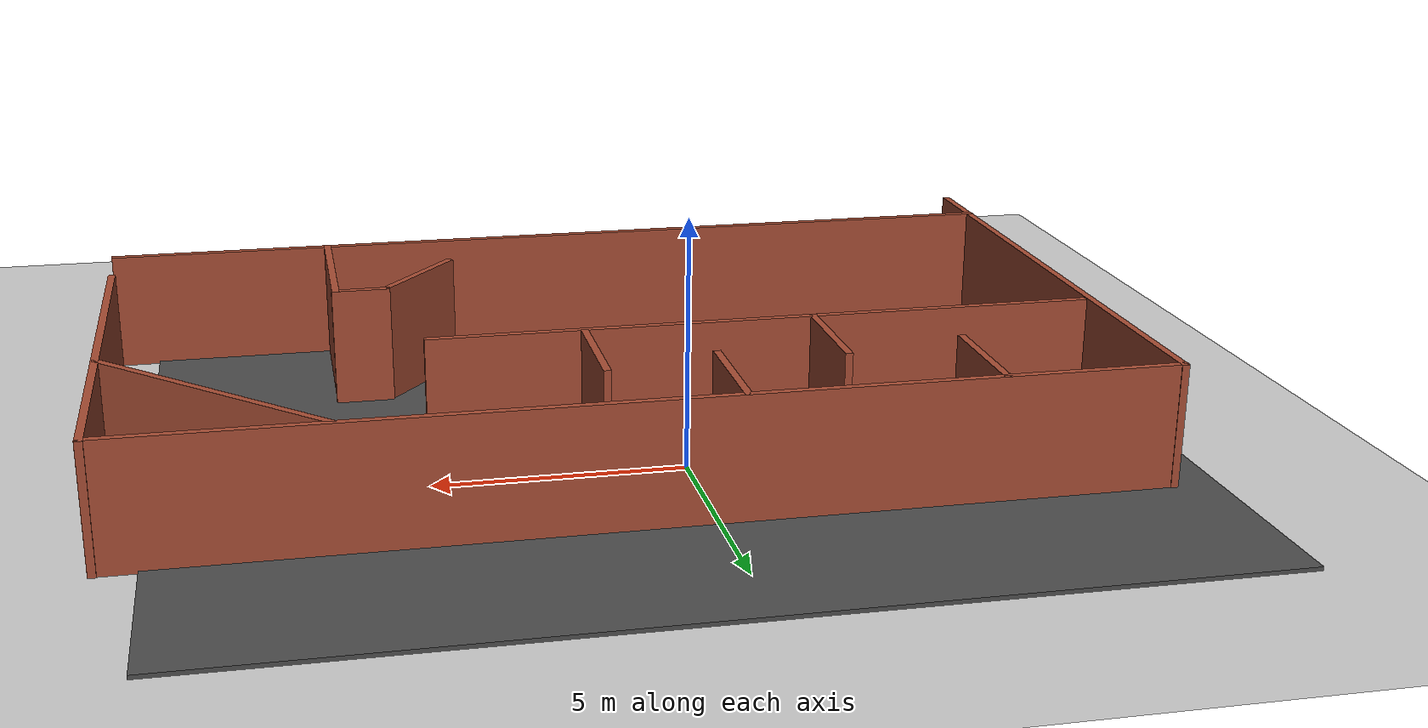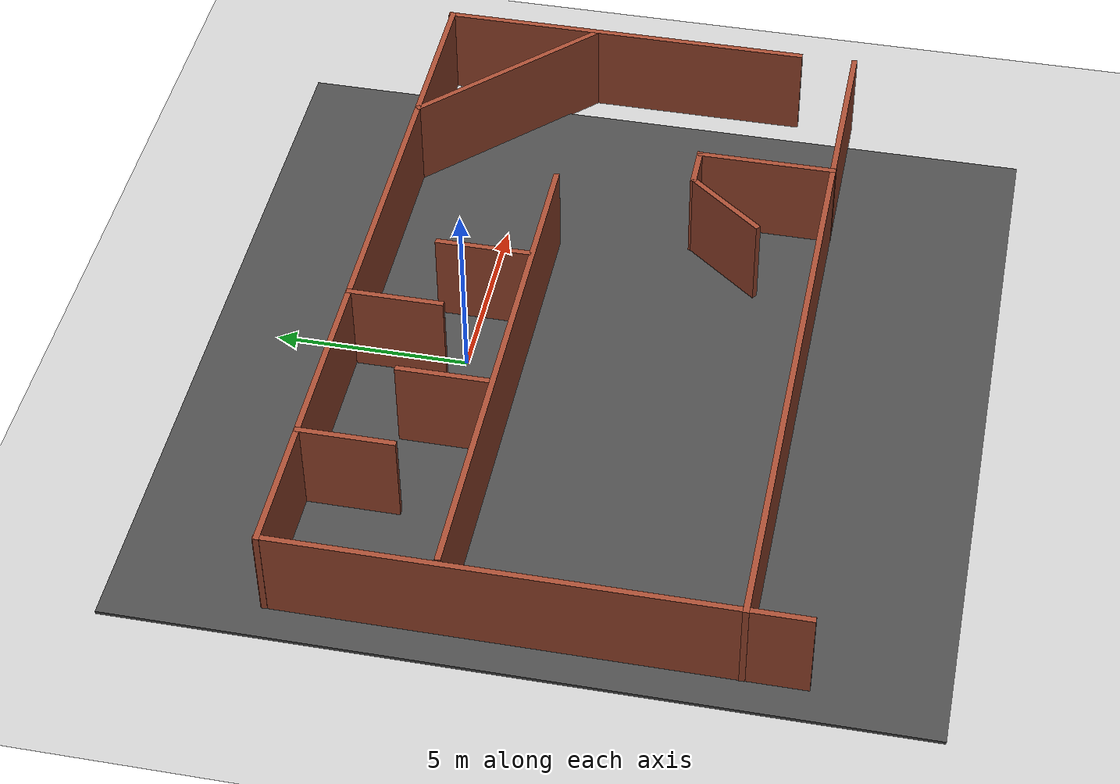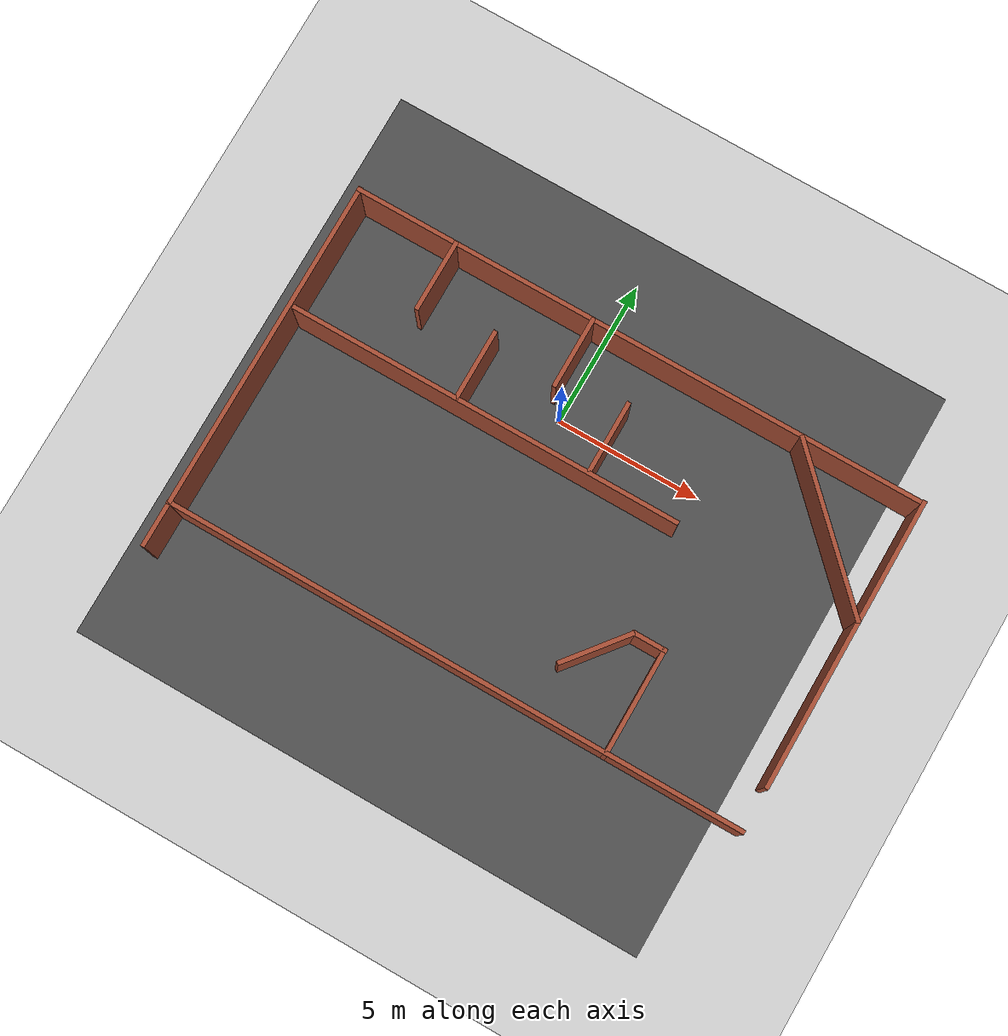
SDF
<sdf version="1.6">
 <world name="default">
  <light name="sun" type="directional">
   <pose>0 0 10 0 -0 0</pose>
   <diffuse>0.8 0.8 0.8 1</diffuse>
   <specular>0.2 0.2 0.2 1</specular>
   <attenuation>
    <range>1000</range>
    <constant>0.9</constant>
    <linear>0.01</linear>
    <quadratic>0.001</quadratic>
   </attenuation>
   <direction>-0.5 0.1 -0.9</direction>
  </light>
  <model name="ground_plane">
   <static>1</static>
   <link name="link">
    <collision name="collision">
     <geometry><plane><normal>0 0 1</normal><size>100 100</size></plane></geometry>
     <surface><friction><ode><mu>100</mu><mu2>50</mu2></ode></friction></surface>
    </collision>
    <visual name="visual">
     <cast_shadows>0</cast_shadows>
     <geometry><plane><normal>0 0 1</normal><size>100 100</size></plane></geometry>
     <material>
      <script><uri>file://media/materials/scripts/gazebo.material</uri><name>Gazebo/Grey</name></script>
     </material>
    </visual>
    <velocity_decay><linear>0</linear><angular>0</angular></velocity_decay>
   </link>
  </model>
  <physics name="default_physics" default="0" type="ode">
   <max_step_size>0.01</max_step_size>
   <real_time_factor>1</real_time_factor>
   <real_time_update_rate>100</real_time_update_rate>
  </physics>
  <scene><ambient>0.4 0.4 0.4 1</ambient><background>0.7 0.7 0.7 1</background><shadows>1</shadows></scene>
  <model name="asphalt_plane">
   <static>1</static>
   <link name="link">
    <collision name="collision"><geometry><box><size>19.9999 20 0.1</size></box></geometry></collision>
    <visual name="visual">
     <cast_shadows>0</cast_shadows>
     <geometry><box><size>19.9999 20 0.1</size></box></geometry>
     <material>
      <script>
       <uri>model://asphalt_plane/materials/scripts</uri>
       <uri>model://asphalt_plane/materials/textures</uri>
       <name>vrc/asphalt</name>
      </script>
     </material>
    </visual>
    <velocity_decay><linear>0</linear><angular>0</angular></velocity_decay>
   </link>
   <pose>0.280698 -3.28064 0 0 -0 0</pose>
  </model>
  <gravity>0 0 -9.8</gravity>
  <magnetic_field>6e-06 2.3e-05 -4.2e-05</magnetic_field>
  <atmosphere type="adiabatic"/>
  <spherical_coordinates>
   <surface_model>EARTH_WGS84</surface_model>
   <latitude_deg>0</latitude_deg>
   <longitude_deg>0</longitude_deg>
   <elevation>0</elevation>
   <heading_deg>0</heading_deg>
  </spherical_coordinates>
  <model name="tesetarena1">
   <link name="Wall_10">
    <pose>-6.45755 3.71248 0 0 0 -1.5708</pose>
    <inertial>
     <mass>1</mass>
     <inertia><ixx>1</ixx><ixy>0</ixy><ixz>0</ixz><iyy>1</iyy><iyz>0</iyz><izz>1</izz></inertia>
    </inertial>
    <visual name="Wall_10_Visual">
     <pose>0 0 1.25 0 -0 0</pose>
     <geometry><box><size>2.5 0.15 2.5</size></box></geometry>
     <material>
      <script><uri>file://media/materials/scripts/gazebo.material</uri><name>Gazebo/Bricks</name></script>
      <ambient>1 1 1 1</ambient>
      <shader type="pixel"><normal_map>__default__</normal_map></shader>
      <diffuse>1 1 1 1</diffuse>
      <specular>0.2 0.2 0.2 1</specular>
      <emissive>0 0 0 1</emissive>
     </material>
     <meta><layer>0</layer></meta>
    </visual>
    <collision name="Wall_10_Collision">
     <pose>0 0 1.25 0 -0 0</pose>
     <geometry><box><size>2.5 0.15 2.5</size></box></geometry>
     <surface>
      <friction>
       <ode><mu>1</mu><mu2>1</mu2><fdir1>0 0 0</fdir1><slip1>0</slip1><slip2>0</slip2></ode>
       <torsional>
        <coefficient>1</coefficient>
        <patch_radius>0</patch_radius>
        <surface_radius>0</surface_radius>
        <use_patch_radius>1</use_patch_radius>
        <ode><slip>0</slip></ode>
       </torsional>
      </friction>
      <bounce><restitution_coefficient>0</restitution_coefficient><threshold>1e+06</threshold></bounce>
      <contact>
       <collide_without_contact>0</collide_without_contact>
       <collide_without_contact_bitmask>1</collide_without_contact_bitmask>
       <collide_bitmask>1</collide_bitmask>
       <ode>
        <soft_cfm>0</soft_cfm>
        <soft_erp>0.2</soft_erp>
        <kp>1e+13</kp>
        <kd>1</kd>
        <max_vel>0.01</max_vel>
        <min_depth>0</min_depth>
       </ode>
       <bullet>
        <split_impulse>1</split_impulse>
        <split_impulse_penetration_threshold>-0.01</split_impulse_penetration_threshold>
        <soft_cfm>0</soft_cfm>
        <soft_erp>0.2</soft_erp>
        <kp>1e+13</kp>
        <kd>1</kd>
       </bullet>
      </contact>
     </surface>
    </collision>
   </link>
   <link name="Wall_10_clone_0">
    <pose>-1.58683 3.70851 0 0 0 -1.5708</pose>
    <inertial>
     <mass>1</mass>
     <inertia><ixx>1</ixx><ixy>0</ixy><ixz>0</ixz><iyy>1</iyy><iyz>0</iyz><izz>1</izz></inertia>
    </inertial>
    <visual name="Wall_10_Visual">
     <pose>0 0 1.25 0 -0 0</pose>
     <geometry><box><size>2.5 0.15 2.5</size></box></geometry>
     <material>
      <script><uri>file://media/materials/scripts/gazebo.material</uri><name>Gazebo/Bricks</name></script>
      <ambient>1 1 1 1</ambient>
      <shader type="pixel"><normal_map>__default__</normal_map></shader>
      <diffuse>1 1 1 1</diffuse>
      <specular>0.2 0.2 0.2 1</specular>
      <emissive>0 0 0 1</emissive>
     </material>
     <meta><layer>0</layer></meta>
    </visual>
    <collision name="Wall_10_Collision">
     <pose>0 0 1.25 0 -0 0</pose>
     <geometry><box><size>2.5 0.15 2.5</size></box></geometry>
     <surface>
      <friction>
       <ode><mu>1</mu><mu2>1</mu2><fdir1>0 0 0</fdir1><slip1>0</slip1><slip2>0</slip2></ode>
       <torsional>
        <coefficient>1</coefficient>
        <patch_radius>0</patch_radius>
        <surface_radius>0</surface_radius>
        <use_patch_radius>1</use_patch_radius>
        <ode><slip>0</slip></ode>
       </torsional>
      </friction>
      <bounce><restitution_coefficient>0</restitution_coefficient><threshold>1e+06</threshold></bounce>
      <contact>
       <collide_without_contact>0</collide_without_contact>
       <collide_without_contact_bitmask>1</collide_without_contact_bitmask>
       <collide_bitmask>1</collide_bitmask>
       <ode>
        <soft_cfm>0</soft_cfm>
        <soft_erp>0.2</soft_erp>
        <kp>1e+13</kp>
        <kd>1</kd>
        <max_vel>0.01</max_vel>
        <min_depth>0</min_depth>
       </ode>
       <bullet>
        <split_impulse>1</split_impulse>
        <split_impulse_penetration_threshold>-0.01</split_impulse_penetration_threshold>
        <soft_cfm>0</soft_cfm>
        <soft_erp>0.2</soft_erp>
        <kp>1e+13</kp>
        <kd>1</kd>
       </bullet>
      </contact>
     </surface>
    </collision>
   </link>
   <link name="Wall_10_clone_0_clone">
    <pose>-4 1.85792 0 0 0 -1.5708</pose>
    <inertial>
     <mass>1</mass>
     <inertia><ixx>1</ixx><ixy>0</ixy><ixz>0</ixz><iyy>1</iyy><iyz>0</iyz><izz>1</izz></inertia>
    </inertial>
    <visual name="Wall_10_Visual">
     <pose>0 0 1.25 0 -0 0</pose>
     <geometry><box><size>2.5 0.15 2.5</size></box></geometry>
     <material>
      <script><uri>file://media/materials/scripts/gazebo.material</uri><name>Gazebo/Bricks</name></script>
      <ambient>1 1 1 1</ambient>
      <shader type="pixel"><normal_map>__default__</normal_map></shader>
      <diffuse>1 1 1 1</diffuse>
      <specular>0.2 0.2 0.2 1</specular>
      <emissive>0 0 0 1</emissive>
     </material>
     <meta><layer>0</layer></meta>
    </visual>
    <collision name="Wall_10_Collision">
     <pose>0 0 1.25 0 -0 0</pose>
     <geometry><box><size>2.5 0.15 2.5</size></box></geometry>
     <surface>
      <friction>
       <ode><mu>1</mu><mu2>1</mu2><fdir1>0 0 0</fdir1><slip1>0</slip1><slip2>0</slip2></ode>
       <torsional>
        <coefficient>1</coefficient>
        <patch_radius>0</patch_radius>
        <surface_radius>0</surface_radius>
        <use_patch_radius>1</use_patch_radius>
        <ode><slip>0</slip></ode>
       </torsional>
      </friction>
      <bounce><restitution_coefficient>0</restitution_coefficient><threshold>1e+06</threshold></bounce>
      <contact>
       <collide_without_contact>0</collide_without_contact>
       <collide_without_contact_bitmask>1</collide_without_contact_bitmask>
       <collide_bitmask>1</collide_bitmask>
       <ode>
        <soft_cfm>0</soft_cfm>
        <soft_erp>0.2</soft_erp>
        <kp>1e+13</kp>
        <kd>1</kd>
        <max_vel>0.01</max_vel>
        <min_depth>0</min_depth>
       </ode>
       <bullet>
        <split_impulse>1</split_impulse>
        <split_impulse_penetration_threshold>-0.01</split_impulse_penetration_threshold>
        <soft_cfm>0</soft_cfm>
        <soft_erp>0.2</soft_erp>
        <kp>1e+13</kp>
        <kd>1</kd>
       </bullet>
      </contact>
     </surface>
    </collision>
   </link>
   <link name="Wall_10_clone_0_clone_0">
    <pose>5.29407 -4.67338 0 0 0 -1.5708</pose>
    <inertial>
     <inertia><ixx>0</ixx><ixy>0</ixy><ixz>0</ixz><iyy>0</iyy><iyz>0</iyz><izz>0</izz></inertia>
     <mass>0</mass>
    </inertial>
    <visual name="Wall_10_Visual">
     <pose>0 0 1.25 0 -0 0</pose>
     <geometry><box><size>3.7002 0.15 2.5</size></box></geometry>
     <material>
      <script><uri>file://media/materials/scripts/gazebo.material</uri><name>Gazebo/Bricks</name></script>
      <ambient>1 1 1 1</ambient>
      <shader type="pixel"/>
      <diffuse>1 1 1 1</diffuse>
      <specular>0.2 0.2 0.2 1</specular>
      <emissive>0 0 0 1</emissive>
     </material>
     <meta><layer>0</layer></meta>
    </visual>
    <collision name="Wall_10_Collision">
     <pose>0 0 1.25 0 -0 0</pose>
     <geometry><box><size>3.7002 0.15 2.5</size></box></geometry>
     <surface>
      <friction>
       <ode><mu>1</mu><mu2>1</mu2><fdir1>0 0 0</fdir1><slip1>0</slip1><slip2>0</slip2></ode>
       <torsional>
        <coefficient>1</coefficient>
        <patch_radius>0</patch_radius>
        <surface_radius>0</surface_radius>
        <use_patch_radius>1</use_patch_radius>
        <ode><slip>0</slip></ode>
       </torsional>
      </friction>
      <bounce><restitution_coefficient>0</restitution_coefficient><threshold>1e+06</threshold></bounce>
      <contact>
       <collide_without_contact>0</collide_without_contact>
       <collide_without_contact_bitmask>1</collide_without_contact_bitmask>
       <collide_bitmask>1</collide_bitmask>
       <ode>
        <soft_cfm>0</soft_cfm>
        <soft_erp>0.2</soft_erp>
        <kp>1e+13</kp>
        <kd>1</kd>
        <max_vel>0.01</max_vel>
        <min_depth>0</min_depth>
       </ode>
       <bullet>
        <split_impulse>1</split_impulse>
        <split_impulse_penetration_threshold>-0.01</split_impulse_penetration_threshold>
        <soft_cfm>0</soft_cfm>
        <soft_erp>0.2</soft_erp>
        <kp>1e+13</kp>
        <kd>1</kd>
       </bullet>
      </contact>
     </surface>
    </collision>
   </link>
   <link name="Wall_10_clone_0_clone_1">
    <pose>4.77417 -2.89503 0 0 -0 0</pose>
    <inertial>
     <mass>0.484259</mass>
     <inertia>
      <ixx>0.253126</ixx>
      <ixy>0</ixy>
      <ixz>0</ixz>
      <iyy>0.311365</iyy>
      <iyz>0</iyz>
      <izz>0.0600549</izz>
     </inertia>
    </inertial>
    <visual name="Wall_10_Visual">
     <pose>0 0 1.25 0 -0 0</pose>
     <geometry><box><size>1.21065 0.15 2.5</size></box></geometry>
     <material>
      <script><uri>file://media/materials/scripts/gazebo.material</uri><name>Gazebo/Bricks</name></script>
      <ambient>1 1 1 1</ambient>
      <shader type="pixel"><normal_map>__default__</normal_map></shader>
      <diffuse>1 1 1 1</diffuse>
      <specular>0.2 0.2 0.2 1</specular>
      <emissive>0 0 0 1</emissive>
     </material>
     <meta><layer>0</layer></meta>
    </visual>
    <collision name="Wall_10_Collision">
     <pose>0 0 1.25 0 -0 0</pose>
     <geometry><box><size>1.21065 0.15 2.5</size></box></geometry>
     <surface>
      <friction>
       <ode><mu>1</mu><mu2>1</mu2><fdir1>0 0 0</fdir1><slip1>0</slip1><slip2>0</slip2></ode>
       <torsional>
        <coefficient>1</coefficient>
        <patch_radius>0</patch_radius>
        <surface_radius>0</surface_radius>
        <use_patch_radius>1</use_patch_radius>
        <ode><slip>0</slip></ode>
       </torsional>
      </friction>
      <bounce><restitution_coefficient>0</restitution_coefficient><threshold>1e+06</threshold></bounce>
      <contact>
       <collide_without_contact>0</collide_without_contact>
       <collide_without_contact_bitmask>1</collide_without_contact_bitmask>
       <collide_bitmask>1</collide_bitmask>
       <ode>
        <soft_cfm>0</soft_cfm>
        <soft_erp>0.2</soft_erp>
        <kp>1e+13</kp>
        <kd>1</kd>
        <max_vel>0.01</max_vel>
        <min_depth>0</min_depth>
       </ode>
       <bullet>
        <split_impulse>1</split_impulse>
        <split_impulse_penetration_threshold>-0.01</split_impulse_penetration_threshold>
        <soft_cfm>0</soft_cfm>
        <soft_erp>0.2</soft_erp>
        <kp>1e+13</kp>
        <kd>1</kd>
       </bullet>
      </contact>
     </surface>
    </collision>
   </link>
   <link name="Wall_10_clone_0_clone_2">
    <pose>0.651125 1.94635 0 0 0 -1.5708</pose>
    <inertial>
     <mass>1</mass>
     <inertia><ixx>1</ixx><ixy>0</ixy><ixz>0</ixz><iyy>1</iyy><iyz>0</iyz><izz>1</izz></inertia>
    </inertial>
    <visual name="Wall_10_Visual">
     <pose>0 0 1.25 0 -0 0</pose>
     <geometry><box><size>2.5 0.15 2.5</size></box></geometry>
     <material>
      <script><uri>file://media/materials/scripts/gazebo.material</uri><name>Gazebo/Bricks</name></script>
      <ambient>1 1 1 1</ambient>
      <shader type="pixel"><normal_map>__default__</normal_map></shader>
      <diffuse>1 1 1 1</diffuse>
      <specular>0.2 0.2 0.2 1</specular>
      <emissive>0 0 0 1</emissive>
     </material>
     <meta><layer>0</layer></meta>
    </visual>
    <collision name="Wall_10_Collision">
     <pose>0 0 1.25 0 -0 0</pose>
     <geometry><box><size>2.5 0.15 2.5</size></box></geometry>
     <surface>
      <friction>
       <ode><mu>1</mu><mu2>1</mu2><fdir1>0 0 0</fdir1><slip1>0</slip1><slip2>0</slip2></ode>
       <torsional>
        <coefficient>1</coefficient>
        <patch_radius>0</patch_radius>
        <surface_radius>0</surface_radius>
        <use_patch_radius>1</use_patch_radius>
        <ode><slip>0</slip></ode>
       </torsional>
      </friction>
      <bounce><restitution_coefficient>0</restitution_coefficient><threshold>1e+06</threshold></bounce>
      <contact>
       <collide_without_contact>0</collide_without_contact>
       <collide_without_contact_bitmask>1</collide_without_contact_bitmask>
       <collide_bitmask>1</collide_bitmask>
       <ode>
        <soft_cfm>0</soft_cfm>
        <soft_erp>0.2</soft_erp>
        <kp>1e+13</kp>
        <kd>1</kd>
        <max_vel>0.01</max_vel>
        <min_depth>0</min_depth>
       </ode>
       <bullet>
        <split_impulse>1</split_impulse>
        <split_impulse_penetration_threshold>-0.01</split_impulse_penetration_threshold>
        <soft_cfm>0</soft_cfm>
        <soft_erp>0.2</soft_erp>
        <kp>1e+13</kp>
        <kd>1</kd>
       </bullet>
      </contact>
     </surface>
    </collision>
   </link>
   <link name="Wall_10_clone_0_clone_2_clone">
    <pose>7.82658 2.81474 0 0 0 -0.78</pose>
    <inertial>
     <mass>2.38801</mass>
     <inertia><ixx>1.24823</ixx><ixy>0</ixy><ixz>0</ixz><iyy>8.33641</iyy><iyz>0</iyz><izz>7.09713</izz></inertia>
    </inertial>
    <visual name="Wall_10_Visual">
     <pose>0 0 1.25 0 -0 0</pose>
     <geometry><box><size>5.97003 0.15 2.5</size></box></geometry>
     <material>
      <script><uri>file://media/materials/scripts/gazebo.material</uri><name>Gazebo/Bricks</name></script>
      <ambient>1 1 1 1</ambient>
      <shader type="pixel"><normal_map>__default__</normal_map></shader>
      <diffuse>1 1 1 1</diffuse>
      <specular>0.2 0.2 0.2 1</specular>
      <emissive>0 0 0 1</emissive>
     </material>
     <meta><layer>0</layer></meta>
    </visual>
    <collision name="Wall_10_Collision">
     <pose>0 0 1.25 0 -0 0</pose>
     <geometry><box><size>5.97003 0.15 2.5</size></box></geometry>
     <surface>
      <friction>
       <ode><mu>1</mu><mu2>1</mu2><fdir1>0 0 0</fdir1><slip1>0</slip1><slip2>0</slip2></ode>
       <torsional>
        <coefficient>1</coefficient>
        <patch_radius>0</patch_radius>
        <surface_radius>0</surface_radius>
        <use_patch_radius>1</use_patch_radius>
        <ode><slip>0</slip></ode>
       </torsional>
      </friction>
      <bounce><restitution_coefficient>0</restitution_coefficient><threshold>1e+06</threshold></bounce>
      <contact>
       <collide_without_contact>0</collide_without_contact>
       <collide_without_contact_bitmask>1</collide_without_contact_bitmask>
       <collide_bitmask>1</collide_bitmask>
       <ode>
        <soft_cfm>0</soft_cfm>
        <soft_erp>0.2</soft_erp>
        <kp>1e+13</kp>
        <kd>1</kd>
        <max_vel>0.01</max_vel>
        <min_depth>0</min_depth>
       </ode>
       <bullet>
        <split_impulse>1</split_impulse>
        <split_impulse_penetration_threshold>-0.01</split_impulse_penetration_threshold>
        <soft_cfm>0</soft_cfm>
        <soft_erp>0.2</soft_erp>
        <kp>1e+13</kp>
        <kd>1</kd>
       </bullet>
      </contact>
     </surface>
    </collision>
   </link>
   <link name="Wall_10_clone_3">
    <pose>3.47796 -3.86496 0 0 0 -2.24445</pose>
    <visual name="Wall_10_Visual">
     <pose>0 0 1.25 0 -0 0</pose>
     <geometry><box><size>2.5 0.15 2.5</size></box></geometry>
     <material>
      <script><uri>file://media/materials/scripts/gazebo.material</uri><name>Gazebo/Bricks</name></script>
      <ambient>1 1 1 1</ambient>
      <shader type="pixel"/>
      <diffuse>1 1 1 1</diffuse>
      <specular>0.2 0.2 0.2 1</specular>
      <emissive>0 0 0 1</emissive>
     </material>
     <meta><layer>0</layer></meta>
    </visual>
    <collision name="Wall_10_Collision">
     <pose>0 0 1.25 0 -0 0</pose>
     <geometry><box><size>2.5 0.15 2.5</size></box></geometry>
     <surface>
      <friction>
       <ode><mu>1</mu><mu2>1</mu2><fdir1>0 0 0</fdir1><slip1>0</slip1><slip2>0</slip2></ode>
       <torsional>
        <coefficient>1</coefficient>
        <patch_radius>0</patch_radius>
        <surface_radius>0</surface_radius>
        <use_patch_radius>1</use_patch_radius>
        <ode><slip>0</slip></ode>
       </torsional>
      </friction>
      <bounce><restitution_coefficient>0</restitution_coefficient><threshold>1e+06</threshold></bounce>
      <contact>
       <collide_without_contact>0</collide_without_contact>
       <collide_without_contact_bitmask>1</collide_without_contact_bitmask>
       <collide_bitmask>1</collide_bitmask>
       <ode>
        <soft_cfm>0</soft_cfm>
        <soft_erp>0.2</soft_erp>
        <kp>1e+13</kp>
        <kd>1</kd>
        <max_vel>0.01</max_vel>
        <min_depth>0</min_depth>
       </ode>
       <bullet>
        <split_impulse>1</split_impulse>
        <split_impulse_penetration_threshold>-0.01</split_impulse_penetration_threshold>
        <soft_cfm>0</soft_cfm>
        <soft_erp>0.2</soft_erp>
        <kp>1e+13</kp>
        <kd>1</kd>
       </bullet>
      </contact>
     </surface>
    </collision>
   </link>
   <link name="Wall_13">
    <pose>-3.01008 0.669302 0 0 -0 3.14159</pose>
    <inertial>
     <mass>1.35897</mass>
     <inertia><ixx>0.710346</ixx><ixy>0</ixy><ixz>0</ixz><iyy>21.6225</iyy><iyz>0</iyz><izz>20.9172</izz></inertia>
    </inertial>
    <visual name="Wall_13_Visual">
     <pose>0 0 1.25 0 -0 0</pose>
     <geometry><box><size>13.5897 0.15 2.5</size></box></geometry>
     <material>
      <script><uri>file://media/materials/scripts/gazebo.material</uri><name>Gazebo/Bricks</name></script>
      <ambient>1 1 1 1</ambient>
      <shader type="pixel"><normal_map>__default__</normal_map></shader>
      <diffuse>1 1 1 1</diffuse>
      <specular>0.2 0.2 0.2 1</specular>
      <emissive>0 0 0 1</emissive>
     </material>
     <meta><layer>0</layer></meta>
    </visual>
    <collision name="Wall_13_Collision">
     <pose>0 0 1.25 0 -0 0</pose>
     <geometry><box><size>13.5897 0.15 2.5</size></box></geometry>
     <surface>
      <friction>
       <ode><mu>1</mu><mu2>1</mu2><fdir1>0 0 0</fdir1><slip1>0</slip1><slip2>0</slip2></ode>
       <torsional>
        <coefficient>1</coefficient>
        <patch_radius>0</patch_radius>
        <surface_radius>0</surface_radius>
        <use_patch_radius>1</use_patch_radius>
        <ode><slip>0</slip></ode>
       </torsional>
      </friction>
      <bounce><restitution_coefficient>0</restitution_coefficient><threshold>1e+06</threshold></bounce>
      <contact>
       <collide_without_contact>0</collide_without_contact>
       <collide_without_contact_bitmask>1</collide_without_contact_bitmask>
       <collide_bitmask>1</collide_bitmask>
       <ode>
        <soft_cfm>0</soft_cfm>
        <soft_erp>0.2</soft_erp>
        <kp>1e+13</kp>
        <kd>1</kd>
        <max_vel>0.01</max_vel>
        <min_depth>0</min_depth>
       </ode>
       <bullet>
        <split_impulse>1</split_impulse>
        <split_impulse_penetration_threshold>-0.01</split_impulse_penetration_threshold>
        <soft_cfm>0</soft_cfm>
        <soft_erp>0.2</soft_erp>
        <kp>1e+13</kp>
        <kd>1</kd>
       </bullet>
      </contact>
     </surface>
    </collision>
   </link>
   <link name="Wall_2">
    <pose>0.003794 4.89766 0 0 -0 0</pose>
    <visual name="Wall_2_Visual">
     <pose>0 0 1.25 0 -0 0</pose>
     <geometry><box><size>20 0.15 2.5</size></box></geometry>
     <material>
      <script><uri>file://media/materials/scripts/gazebo.material</uri><name>Gazebo/Bricks</name></script>
      <ambient>1 1 1 1</ambient>
      <shader type="pixel"/>
      <diffuse>1 1 1 1</diffuse>
      <specular>0.2 0.2 0.2 1</specular>
      <emissive>0 0 0 1</emissive>
     </material>
     <meta><layer>0</layer></meta>
    </visual>
    <collision name="Wall_2_Collision">
     <pose>0 0 1.25 0 -0 0</pose>
     <geometry><box><size>20 0.15 2.5</size></box></geometry>
     <surface>
      <friction>
       <ode><mu>1</mu><mu2>1</mu2><fdir1>0 0 0</fdir1><slip1>0</slip1><slip2>0</slip2></ode>
       <torsional>
        <coefficient>1</coefficient>
        <patch_radius>0</patch_radius>
        <surface_radius>0</surface_radius>
        <use_patch_radius>1</use_patch_radius>
        <ode><slip>0</slip></ode>
       </torsional>
      </friction>
      <bounce><restitution_coefficient>0</restitution_coefficient><threshold>1e+06</threshold></bounce>
      <contact>
       <collide_without_contact>0</collide_without_contact>
       <collide_without_contact_bitmask>1</collide_without_contact_bitmask>
       <collide_bitmask>1</collide_bitmask>
       <ode>
        <soft_cfm>0</soft_cfm>
        <soft_erp>0.2</soft_erp>
        <kp>1e+13</kp>
        <kd>1</kd>
        <max_vel>0.01</max_vel>
        <min_depth>0</min_depth>
       </ode>
       <bullet>
        <split_impulse>1</split_impulse>
        <split_impulse_penetration_threshold>-0.01</split_impulse_penetration_threshold>
        <soft_cfm>0</soft_cfm>
        <soft_erp>0.2</soft_erp>
        <kp>1e+13</kp>
        <kd>1</kd>
       </bullet>
      </contact>
     </surface>
    </collision>
   </link>
   <link name="Wall_4">
    <pose>9.925 0 0 0 0 -1.5708</pose>
    <visual name="Wall_4_Visual">
     <pose>0 0 1.25 0 -0 0</pose>
     <geometry><box><size>10 0.15 2.5</size></box></geometry>
     <material>
      <script><uri>file://media/materials/scripts/gazebo.material</uri><name>Gazebo/Bricks</name></script>
      <ambient>1 1 1 1</ambient>
      <shader type="pixel"/>
      <diffuse>1 1 1 1</diffuse>
      <specular>0.2 0.2 0.2 1</specular>
      <emissive>0 0 0 1</emissive>
     </material>
     <meta><layer>0</layer></meta>
    </visual>
    <collision name="Wall_4_Collision">
     <pose>0 0 1.25 0 -0 0</pose>
     <geometry><box><size>10 0.15 2.5</size></box></geometry>
     <surface>
      <friction>
       <ode><mu>1</mu><mu2>1</mu2><fdir1>0 0 0</fdir1><slip1>0</slip1><slip2>0</slip2></ode>
       <torsional>
        <coefficient>1</coefficient>
        <patch_radius>0</patch_radius>
        <surface_radius>0</surface_radius>
        <use_patch_radius>1</use_patch_radius>
        <ode><slip>0</slip></ode>
       </torsional>
      </friction>
      <bounce><restitution_coefficient>0</restitution_coefficient><threshold>1e+06</threshold></bounce>
      <contact>
       <collide_without_contact>0</collide_without_contact>
       <collide_without_contact_bitmask>1</collide_without_contact_bitmask>
       <collide_bitmask>1</collide_bitmask>
       <ode>
        <soft_cfm>0</soft_cfm>
        <soft_erp>0.2</soft_erp>
        <kp>1e+13</kp>
        <kd>1</kd>
        <max_vel>0.01</max_vel>
        <min_depth>0</min_depth>
       </ode>
       <bullet>
        <split_impulse>1</split_impulse>
        <split_impulse_penetration_threshold>-0.01</split_impulse_penetration_threshold>
        <soft_cfm>0</soft_cfm>
        <soft_erp>0.2</soft_erp>
        <kp>1e+13</kp>
        <kd>1</kd>
       </bullet>
      </contact>
     </surface>
    </collision>
   </link>
   <link name="Wall_6">
    <pose>-9.9146 -1.51392 0 0 0 -1.5708</pose>
    <inertial>
     <mass>1</mass>
     <inertia><ixx>1</ixx><ixy>0</ixy><ixz>0</ixz><iyy>1</iyy><iyz>0</iyz><izz>1</izz></inertia>
    </inertial>
    <visual name="Wall_6_Visual">
     <pose>0 0 1.25 0 -0 0</pose>
     <geometry><box><size>13 0.15 2.5</size></box></geometry>
     <material>
      <script><uri>file://media/materials/scripts/gazebo.material</uri><name>Gazebo/Bricks</name></script>
      <ambient>1 1 1 1</ambient>
      <shader type="pixel"><normal_map>__default__</normal_map></shader>
      <diffuse>1 1 1 1</diffuse>
      <specular>0.2 0.2 0.2 1</specular>
      <emissive>0 0 0 1</emissive>
     </material>
     <meta><layer>0</layer></meta>
    </visual>
    <collision name="Wall_6_Collision">
     <pose>0 0 1.25 0 -0 0</pose>
     <geometry><box><size>10 0.15 2.5</size></box></geometry>
     <surface>
      <friction>
       <ode><mu>1</mu><mu2>1</mu2><fdir1>0 0 0</fdir1><slip1>0</slip1><slip2>0</slip2></ode>
       <torsional>
        <coefficient>1</coefficient>
        <patch_radius>0</patch_radius>
        <surface_radius>0</surface_radius>
        <use_patch_radius>1</use_patch_radius>
        <ode><slip>0</slip></ode>
       </torsional>
      </friction>
      <bounce><restitution_coefficient>0</restitution_coefficient><threshold>1e+06</threshold></bounce>
      <contact>
       <collide_without_contact>0</collide_without_contact>
       <collide_without_contact_bitmask>1</collide_without_contact_bitmask>
       <collide_bitmask>1</collide_bitmask>
       <ode>
        <soft_cfm>0</soft_cfm>
        <soft_erp>0.2</soft_erp>
        <kp>1e+13</kp>
        <kd>1</kd>
        <max_vel>0.01</max_vel>
        <min_depth>0</min_depth>
       </ode>
       <bullet>
        <split_impulse>1</split_impulse>
        <split_impulse_penetration_threshold>-0.01</split_impulse_penetration_threshold>
        <soft_cfm>0</soft_cfm>
        <soft_erp>0.2</soft_erp>
        <kp>1e+13</kp>
        <kd>1</kd>
       </bullet>
      </contact>
     </surface>
    </collision>
   </link>
   <link name="Wall_8">
    <pose>0 -6.4401 0 0 -0 0</pose>
    <visual name="Wall_8_Visual">
     <pose>0 0 1.25 0 -0 0</pose>
     <geometry><box><size>20 0.15 2.5</size></box></geometry>
     <material>
      <script><uri>file://media/materials/scripts/gazebo.material</uri><name>Gazebo/Bricks</name></script>
      <ambient>1 1 1 1</ambient>
      <shader type="pixel"/>
      <diffuse>1 1 1 1</diffuse>
      <specular>0.2 0.2 0.2 1</specular>
      <emissive>0 0 0 1</emissive>
     </material>
     <meta><layer>0</layer></meta>
    </visual>
    <collision name="Wall_8_Collision">
     <pose>0 0 1.25 0 -0 0</pose>
     <geometry><box><size>20 0.15 2.5</size></box></geometry>
     <surface>
      <friction>
       <ode><mu>1</mu><mu2>1</mu2><fdir1>0 0 0</fdir1><slip1>0</slip1><slip2>0</slip2></ode>
       <torsional>
        <coefficient>1</coefficient>
        <patch_radius>0</patch_radius>
        <surface_radius>0</surface_radius>
        <use_patch_radius>1</use_patch_radius>
        <ode><slip>0</slip></ode>
       </torsional>
      </friction>
      <bounce><restitution_coefficient>0</restitution_coefficient><threshold>1e+06</threshold></bounce>
      <contact>
       <collide_without_contact>0</collide_without_contact>
       <collide_without_contact_bitmask>1</collide_without_contact_bitmask>
       <collide_bitmask>1</collide_bitmask>
       <ode>
        <soft_cfm>0</soft_cfm>
        <soft_erp>0.2</soft_erp>
        <kp>1e+13</kp>
        <kd>1</kd>
        <max_vel>0.01</max_vel>
        <min_depth>0</min_depth>
       </ode>
       <bullet>
        <split_impulse>1</split_impulse>
        <split_impulse_penetration_threshold>-0.01</split_impulse_penetration_threshold>
        <soft_cfm>0</soft_cfm>
        <soft_erp>0.2</soft_erp>
        <kp>1e+13</kp>
        <kd>1</kd>
       </bullet>
      </contact>
     </surface>
    </collision>
   </link>
   <static>1</static>
   <pose>1.12015 -2.05993 0 0 -0 0</pose>
  </model>
 </world>
</sdf>
